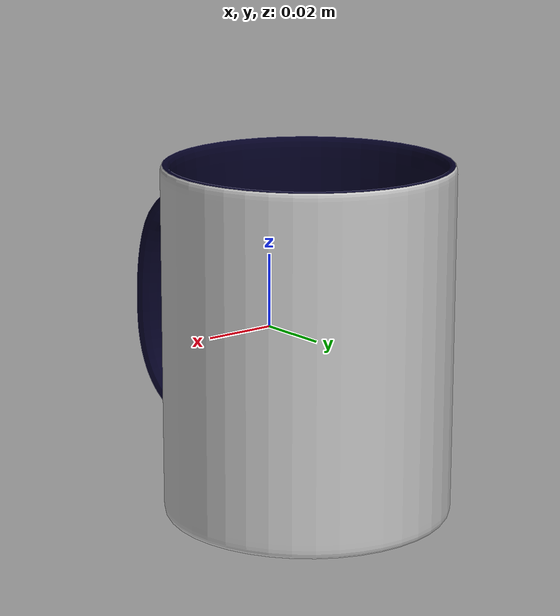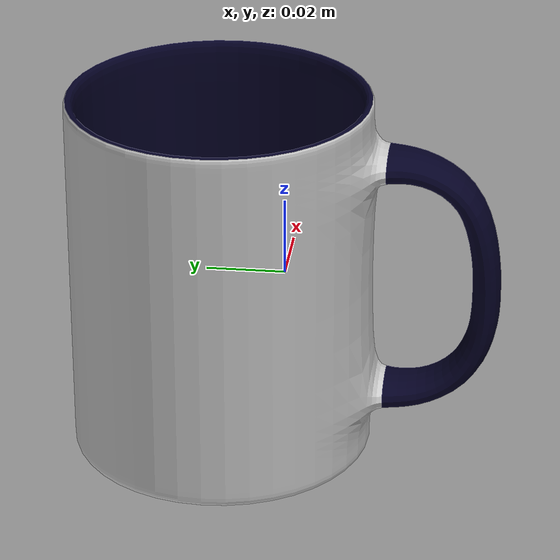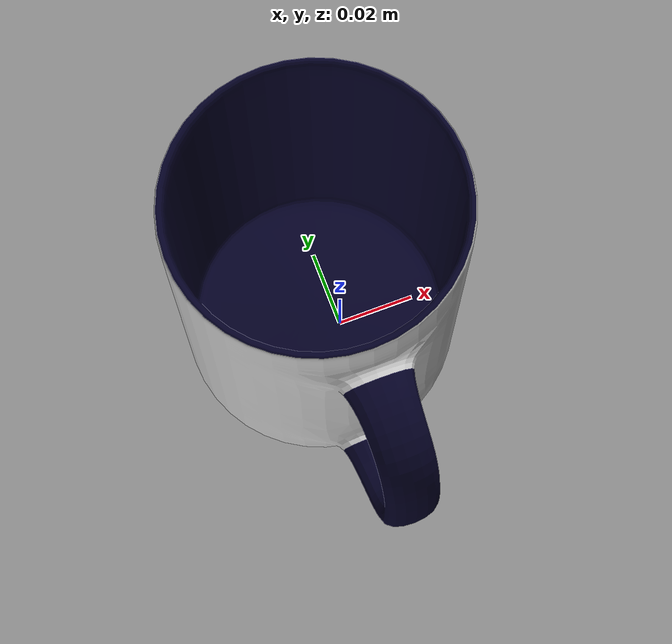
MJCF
<mujoco model="mug_64">
  <asset>
    <mesh file="visual/model_normalized_0.obj" name="model_normalized_0_vis" scale="0.11 0.11 0.11" refquat="0.7071067811865472 0.0 0.0 0.7071067811865476"/>
    <mesh file="visual/model_normalized_1.obj" name="model_normalized_1_vis" scale="0.11 0.11 0.11" refquat="0.7071067811865472 0.0 0.0 0.7071067811865476"/>
    <material name="Mutra" specular="0.1" shininess="0.2" rgba="0.009897 0.000000 0.137584 1.0" emission="0.15"/>
    <material name="material.084" specular="0.1" shininess="0.2" rgba="0.800000 0.800000 0.800000 1.0" emission="0.15"/>
    <mesh file="collision/collision_mesh_collision_0.obj" name="mug_collision_mesh_0" scale="0.11 0.11 0.11" refquat="0.7071067811865472 0.0 0.0 0.7071067811865476"/>
    <mesh file="collision/collision_mesh_collision_1.obj" name="mug_collision_mesh_1" scale="0.11 0.11 0.11" refquat="0.7071067811865472 0.0 0.0 0.7071067811865476"/>
    <mesh file="collision/collision_mesh_collision_2.obj" name="mug_collision_mesh_2" scale="0.11 0.11 0.11" refquat="0.7071067811865472 0.0 0.0 0.7071067811865476"/>
    <mesh file="collision/collision_mesh_collision_3.obj" name="mug_collision_mesh_3" scale="0.11 0.11 0.11" refquat="0.7071067811865472 0.0 0.0 0.7071067811865476"/>
    <mesh file="collision/collision_mesh_collision_4.obj" name="mug_collision_mesh_4" scale="0.11 0.11 0.11" refquat="0.7071067811865472 0.0 0.0 0.7071067811865476"/>
    <mesh file="collision/collision_mesh_collision_5.obj" name="mug_collision_mesh_5" scale="0.11 0.11 0.11" refquat="0.7071067811865472 0.0 0.0 0.7071067811865476"/>
    <mesh file="collision/collision_mesh_collision_6.obj" name="mug_collision_mesh_6" scale="0.11 0.11 0.11" refquat="0.7071067811865472 0.0 0.0 0.7071067811865476"/>
    <mesh file="collision/collision_mesh_collision_7.obj" name="mug_collision_mesh_7" scale="0.11 0.11 0.11" refquat="0.7071067811865472 0.0 0.0 0.7071067811865476"/>
    <mesh file="collision/collision_mesh_collision_8.obj" name="mug_collision_mesh_8" scale="0.11 0.11 0.11" refquat="0.7071067811865472 0.0 0.0 0.7071067811865476"/>
    <mesh file="collision/collision_mesh_collision_9.obj" name="mug_collision_mesh_9" scale="0.11 0.11 0.11" refquat="0.7071067811865472 0.0 0.0 0.7071067811865476"/>
    <mesh file="collision/collision_mesh_collision_10.obj" name="mug_collision_mesh_10" scale="0.11 0.11 0.11" refquat="0.7071067811865472 0.0 0.0 0.7071067811865476"/>
    <mesh file="collision/collision_mesh_collision_11.obj" name="mug_collision_mesh_11" scale="0.11 0.11 0.11" refquat="0.7071067811865472 0.0 0.0 0.7071067811865476"/>
    <mesh file="collision/collision_mesh_collision_12.obj" name="mug_collision_mesh_12" scale="0.11 0.11 0.11" refquat="0.7071067811865472 0.0 0.0 0.7071067811865476"/>
    <mesh file="collision/collision_mesh_collision_13.obj" name="mug_collision_mesh_13" scale="0.11 0.11 0.11" refquat="0.7071067811865472 0.0 0.0 0.7071067811865476"/>
    <mesh file="collision/collision_mesh_collision_14.obj" name="mug_collision_mesh_14" scale="0.11 0.11 0.11" refquat="0.7071067811865472 0.0 0.0 0.7071067811865476"/>
    <mesh file="collision/collision_mesh_collision_15.obj" name="mug_collision_mesh_15" scale="0.11 0.11 0.11" refquat="0.7071067811865472 0.0 0.0 0.7071067811865476"/>
  </asset>
  <default>
    <default class="region">
      <geom group="1" conaffinity="0" contype="0" rgba="0 1 0 0" density="0"/>
    </default>
    <default class="collision">
      <geom group="3" rgba="0.5 0 0 0.5" density="0"/>
    </default>
  </default>
  <worldbody>
    <body>
      <body name="object">
        <geom density="0" friction="1.2 0.05 0.001" type="mesh" mesh="model_normalized_0_vis" conaffinity="0" contype="0" group="1" material="Mutra" mass="0.3"/>
        <geom density="0" friction="1.2 0.05 0.001" type="mesh" mesh="model_normalized_1_vis" conaffinity="0" contype="0" group="1" material="material.084"/>
        <geom class="region" name="reg_bbox" type="box" pos="0.0 0.0 1.6500000021846263e-09" size="0.038642301500000004 0.055 0.04758190635" density="0"/>        <geom mesh="mug_collision_mesh_0" type="mesh" class="collision" density="0"/>
        <geom mesh="mug_collision_mesh_1" type="mesh" class="collision" density="0"/>
        <geom mesh="mug_collision_mesh_2" type="mesh" class="collision" density="0"/>
        <geom mesh="mug_collision_mesh_3" type="mesh" class="collision" density="0"/>
        <geom mesh="mug_collision_mesh_4" type="mesh" class="collision" density="0"/>
        <geom mesh="mug_collision_mesh_5" type="mesh" class="collision" density="0"/>
        <geom mesh="mug_collision_mesh_6" type="mesh" class="collision" density="0"/>
        <geom mesh="mug_collision_mesh_7" type="mesh" class="collision" density="0"/>
        <geom mesh="mug_collision_mesh_8" type="mesh" class="collision" density="0"/>
        <geom mesh="mug_collision_mesh_9" type="mesh" class="collision" density="0"/>
        <geom mesh="mug_collision_mesh_10" type="mesh" class="collision" density="0"/>
        <geom mesh="mug_collision_mesh_11" type="mesh" class="collision" density="0"/>
        <geom mesh="mug_collision_mesh_12" type="mesh" class="collision" density="0"/>
        <geom mesh="mug_collision_mesh_13" type="mesh" class="collision" density="0"/>
        <geom mesh="mug_collision_mesh_14" type="mesh" class="collision" density="0"/>
        <geom mesh="mug_collision_mesh_15" type="mesh" class="collision" density="0"/>
        <geom rgba="0 0 0 0" size="0.038 0.035" pos="0 0.016 0.0" type="cylinder" name="liquid" class="region" density="0"/>        <geom rgba="0 0 0 0 " size="0.034 0.043" pos="0 0.016 0.004" type="cylinder" name="reg_int" class="region" density="0"/>      </body>
    </body>
  </worldbody>
</mujoco>
